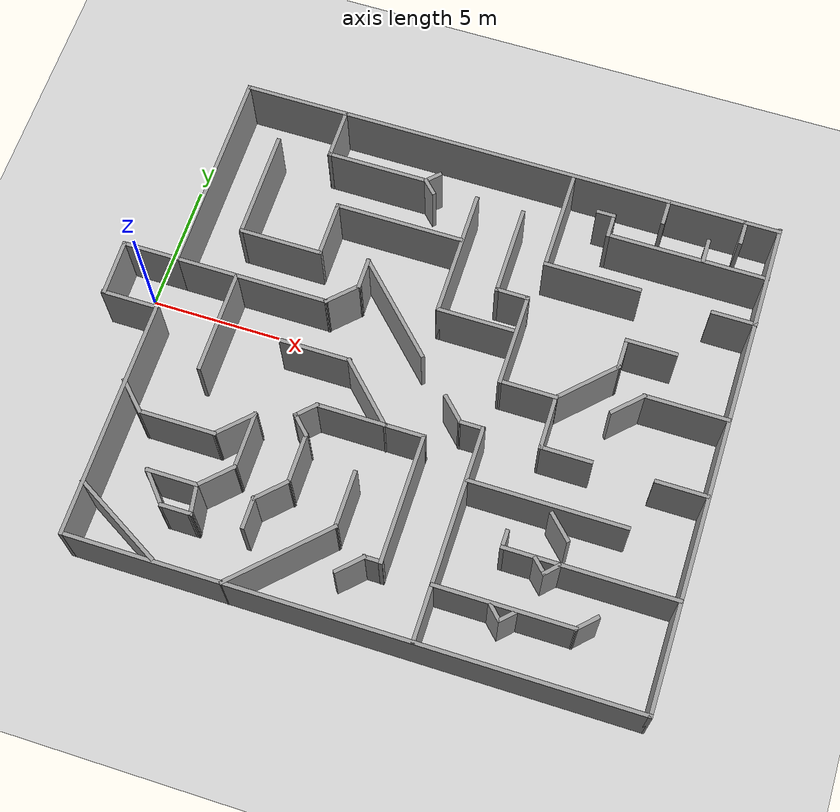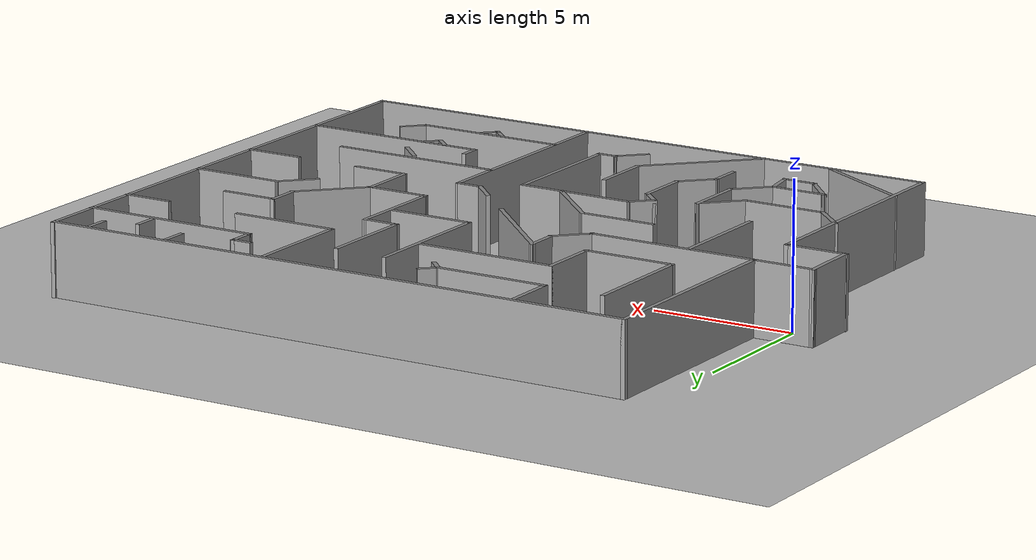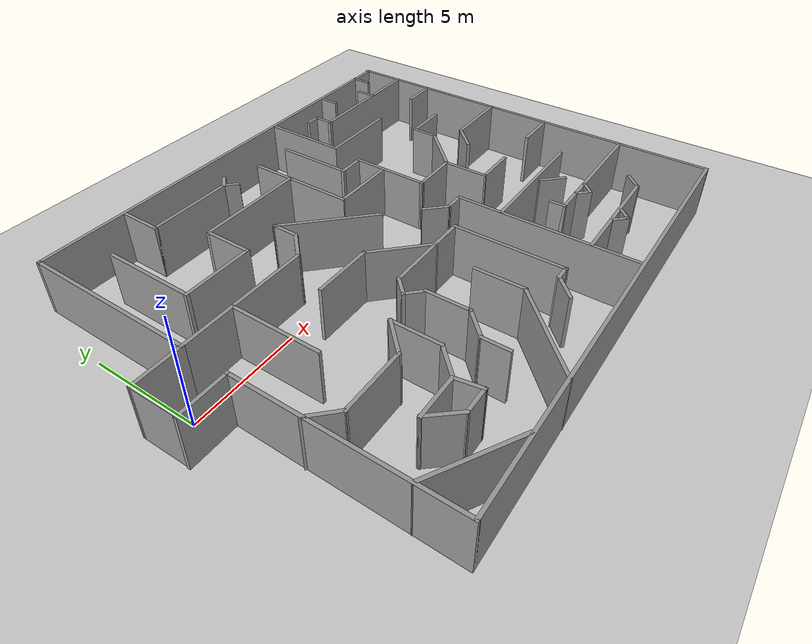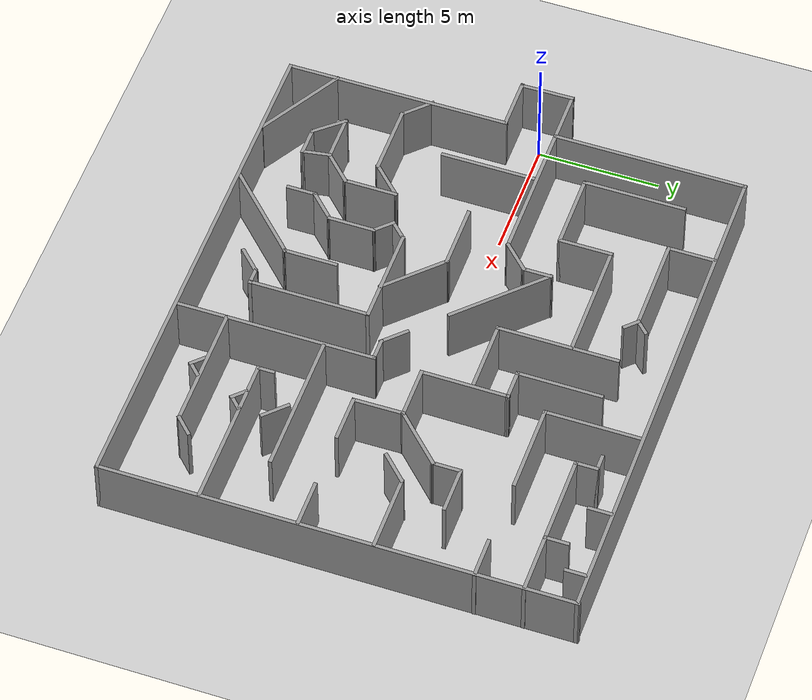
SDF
<sdf version="1.7">
 <world name="default">
  <light name="sun" type="directional">
   <pose>0 0 10 0 -0 0</pose>
   <diffuse>0.8 0.8 0.8 1</diffuse>
   <specular>0.2 0.2 0.2 1</specular>
   <attenuation>
    <range>1000</range>
    <constant>0.9</constant>
    <linear>0.01</linear>
    <quadratic>0.001</quadratic>
   </attenuation>
   <direction>-0.5 0.1 -0.9</direction>
   <spot><inner_angle>0</inner_angle><outer_angle>0</outer_angle><falloff>0</falloff></spot>
  </light>
  <model name="ground_plane">
   <static>1</static>
   <link name="link">
    <collision name="collision">
     <geometry><plane><normal>0 0 1</normal><size>100 100</size></plane></geometry>
     <surface>
      <contact><collide_bitmask>65535</collide_bitmask></contact>
      <friction><ode><mu>100</mu><mu2>50</mu2></ode></friction>
     </surface>
    </collision>
    <visual name="visual">
     <cast_shadows>0</cast_shadows>
     <geometry><plane><normal>0 0 1</normal><size>100 100</size></plane></geometry>
     <material>
      <script><uri>file://media/materials/scripts/gazebo.material</uri><name>Gazebo/Grey</name></script>
     </material>
    </visual>
   </link>
  </model>
  <gravity>0 0 -9.8</gravity>
  <magnetic_field>6e-06 2.3e-05 -4.2e-05</magnetic_field>
  <atmosphere type="adiabatic"/>
  <physics type="ode">
   <max_step_size>0.001</max_step_size>
   <real_time_factor>1</real_time_factor>
   <real_time_update_rate>1000</real_time_update_rate>
  </physics>
  <scene><ambient>0.4 0.4 0.4 1</ambient><background>0.7 0.7 0.7 1</background><shadows>1</shadows></scene>
  <spherical_coordinates>
   <surface_model>EARTH_WGS84</surface_model>
   <latitude_deg>0</latitude_deg>
   <longitude_deg>0</longitude_deg>
   <elevation>0</elevation>
   <heading_deg>0</heading_deg>
  </spherical_coordinates>
  <model name="maze_1">
   <pose>10.4033 -0.718435 0 0 -0 0</pose>
   <link name="Wall_1">
    <collision name="Wall_1_Collision">
     <geometry><box><size>21.25 0.15 2.5</size></box></geometry>
     <pose>0 0 1.25 0 -0 0</pose>
    </collision>
    <visual name="Wall_1_Visual">
     <pose>0 0 1.25 0 -0 0</pose>
     <geometry><box><size>21.25 0.15 2.5</size></box></geometry>
     <material>
      <script><uri>file://media/materials/scripts/gazebo.material</uri><name>Gazebo/Grey</name></script>
      <ambient>1 1 1 1</ambient>
     </material>
     <meta><layer>0</layer></meta>
    </visual>
    <pose>1.04094 9.5097 0 0 -0 0</pose>
   </link>
   <link name="Wall_10">
    <collision name="Wall_10_Collision">
     <geometry><box><size>9.25 0.15 2.5</size></box></geometry>
     <pose>0 0 1.25 0 -0 0</pose>
    </collision>
    <visual name="Wall_10_Visual">
     <pose>0 0 1.25 0 -0 0</pose>
     <geometry><box><size>9.25 0.15 2.5</size></box></geometry>
     <material>
      <script><uri>file://media/materials/scripts/gazebo.material</uri><name>Gazebo/Grey</name></script>
      <ambient>1 1 1 1</ambient>
     </material>
     <meta><layer>0</layer></meta>
    </visual>
    <pose>-9.50906 -4.9903 0 0 -0 -1.5708</pose>
   </link>
   <link name="Wall_101">
    <collision name="Wall_101_Collision">
     <geometry><box><size>1.32162 0.15 2.5</size></box></geometry>
     <pose>0 0 1.25 0 -0 0</pose>
    </collision>
    <visual name="Wall_101_Visual">
     <pose>0 0 1.25 0 -0 0</pose>
     <geometry><box><size>1.32162 0.15 2.5</size></box></geometry>
     <material>
      <script><uri>file://media/materials/scripts/gazebo.material</uri><name>Gazebo/Grey</name></script>
      <ambient>1 1 1 1</ambient>
     </material>
     <meta><layer>0</layer></meta>
    </visual>
    <pose>2.7821 4.02033 0 0 -0 3.14159</pose>
   </link>
   <link name="Wall_103">
    <collision name="Wall_103_Collision">
     <geometry><box><size>3.52514 0.15 2.5</size></box></geometry>
     <pose>0 0 1.25 0 -0 0</pose>
    </collision>
    <visual name="Wall_103_Visual">
     <pose>0 0 1.25 0 -0 0</pose>
     <geometry><box><size>3.52514 0.15 2.5</size></box></geometry>
     <material>
      <script><uri>file://media/materials/scripts/gazebo.material</uri><name>Gazebo/Grey</name></script>
      <ambient>1 1 1 1</ambient>
     </material>
     <meta><layer>0</layer></meta>
    </visual>
    <pose>2.19629 5.70789 0 0 -0 1.5708</pose>
   </link>
   <link name="Wall_105">
    <collision name="Wall_105_Collision">
     <geometry><box><size>5 0.15 2.5</size></box></geometry>
     <pose>0 0 1.25 0 -0 0</pose>
    </collision>
    <visual name="Wall_105_Visual">
     <pose>0 0 1.25 0 -0 0</pose>
     <geometry><box><size>5 0.15 2.5</size></box></geometry>
     <material>
      <script><uri>file://media/materials/scripts/gazebo.material</uri><name>Gazebo/Grey</name></script>
      <ambient>1 1 1 1</ambient>
     </material>
     <meta><layer>0</layer></meta>
    </visual>
    <pose>0.366002 5.02538 0 0 -0 -1.5708</pose>
   </link>
   <link name="Wall_106">
    <collision name="Wall_106_Collision">
     <geometry><box><size>3 0.15 2.5</size></box></geometry>
     <pose>0 0 1.25 0 -0 0</pose>
    </collision>
    <visual name="Wall_106_Visual">
     <pose>0 0 1.25 0 -0 0</pose>
     <geometry><box><size>3 0.15 2.5</size></box></geometry>
     <material>
      <script><uri>file://media/materials/scripts/gazebo.material</uri><name>Gazebo/Grey</name></script>
      <ambient>1 1 1 1</ambient>
     </material>
     <meta><layer>0</layer></meta>
    </visual>
    <pose>1.791 2.60038 0 0 -0 0</pose>
   </link>
   <link name="Wall_108">
    <collision name="Wall_108_Collision">
     <geometry><box><size>5 0.15 2.5</size></box></geometry>
     <pose>0 0 1.25 0 -0 0</pose>
    </collision>
    <visual name="Wall_108_Visual">
     <pose>0 0 1.25 0 -0 0</pose>
     <geometry><box><size>5 0.15 2.5</size></box></geometry>
     <material>
      <script><uri>file://media/materials/scripts/gazebo.material</uri><name>Gazebo/Grey</name></script>
      <ambient>1 1 1 1</ambient>
     </material>
     <meta><layer>0</layer></meta>
    </visual>
    <pose>-2.11149 5.58819 0 0 -0 3.14159</pose>
   </link>
   <link name="Wall_109">
    <collision name="Wall_109_Collision">
     <geometry><box><size>2.25 0.15 2.5</size></box></geometry>
     <pose>0 0 1.25 0 -0 0</pose>
    </collision>
    <visual name="Wall_109_Visual">
     <pose>0 0 1.25 0 -0 0</pose>
     <geometry><box><size>2.25 0.15 2.5</size></box></geometry>
     <material>
      <script><uri>file://media/materials/scripts/gazebo.material</uri><name>Gazebo/Grey</name></script>
      <ambient>1 1 1 1</ambient>
     </material>
     <meta><layer>0</layer></meta>
    </visual>
    <pose>-4.53649 4.53819 0 0 -0 -1.5708</pose>
   </link>
   <link name="Wall_111">
    <collision name="Wall_111_Collision">
     <geometry><box><size>3.25 0.15 2.5</size></box></geometry>
     <pose>0 0 1.25 0 -0 0</pose>
    </collision>
    <visual name="Wall_111_Visual">
     <pose>0 0 1.25 0 -0 0</pose>
     <geometry><box><size>3.25 0.15 2.5</size></box></geometry>
     <material>
      <script><uri>file://media/materials/scripts/gazebo.material</uri><name>Gazebo/Grey</name></script>
      <ambient>1 1 1 1</ambient>
     </material>
     <meta><layer>0</layer></meta>
    </visual>
    <pose>-6.08649 3.48819 0 0 -0 3.14159</pose>
   </link>
   <link name="Wall_112">
    <collision name="Wall_112_Collision">
     <geometry><box><size>4.25 0.15 2.5</size></box></geometry>
     <pose>0 0 1.25 0 -0 0</pose>
    </collision>
    <visual name="Wall_112_Visual">
     <pose>0 0 1.25 0 -0 0</pose>
     <geometry><box><size>4.25 0.15 2.5</size></box></geometry>
     <material>
      <script><uri>file://media/materials/scripts/gazebo.material</uri><name>Gazebo/Grey</name></script>
      <ambient>1 1 1 1</ambient>
     </material>
     <meta><layer>0</layer></meta>
    </visual>
    <pose>-7.63649 5.53819 0 0 -0 1.5708</pose>
   </link>
   <link name="Wall_114">
    <collision name="Wall_114_Collision">
     <geometry><box><size>2 0.15 2.5</size></box></geometry>
     <pose>0 0 1.25 0 -0 0</pose>
    </collision>
    <visual name="Wall_114_Visual">
     <pose>0 0 1.25 0 -0 0</pose>
     <geometry><box><size>2 0.15 2.5</size></box></geometry>
     <material>
      <script><uri>file://media/materials/scripts/gazebo.material</uri><name>Gazebo/Grey</name></script>
      <ambient>1 1 1 1</ambient>
     </material>
     <meta><layer>0</layer></meta>
    </visual>
    <pose>-5.55137 8.54002 0 0 -0 -1.5708</pose>
   </link>
   <link name="Wall_115">
    <collision name="Wall_115_Collision">
     <geometry><box><size>4 0.15 2.5</size></box></geometry>
     <pose>0 0 1.25 0 -0 0</pose>
    </collision>
    <visual name="Wall_115_Visual">
     <pose>0 0 1.25 0 -0 0</pose>
     <geometry><box><size>4 0.15 2.5</size></box></geometry>
     <material>
      <script><uri>file://media/materials/scripts/gazebo.material</uri><name>Gazebo/Grey</name></script>
      <ambient>1 1 1 1</ambient>
     </material>
     <meta><layer>0</layer></meta>
    </visual>
    <pose>-3.62637 7.61502 0 0 -0 0</pose>
   </link>
   <link name="Wall_116">
    <collision name="Wall_116_Collision">
     <geometry><box><size>0.75 0.15 2.5</size></box></geometry>
     <pose>0 0 1.25 0 -0 0</pose>
    </collision>
    <visual name="Wall_116_Visual">
     <pose>0 0 1.25 0 -0 0</pose>
     <geometry><box><size>0.75 0.15 2.5</size></box></geometry>
     <material>
      <script><uri>file://media/materials/scripts/gazebo.material</uri><name>Gazebo/Grey</name></script>
      <ambient>1 1 1 1</ambient>
     </material>
     <meta><layer>0</layer></meta>
    </visual>
    <pose>-1.48924 7.82716 0 0 -0 0.785398</pose>
   </link>
   <link name="Wall_118">
    <collision name="Wall_118_Collision">
     <geometry><box><size>0.75 0.15 2.5</size></box></geometry>
     <pose>0 0 1.25 0 -0 0</pose>
    </collision>
    <visual name="Wall_118_Visual">
     <pose>0 0 1.25 0 -0 0</pose>
     <geometry><box><size>0.75 0.15 2.5</size></box></geometry>
     <material>
      <script><uri>file://media/materials/scripts/gazebo.material</uri><name>Gazebo/Grey</name></script>
      <ambient>1 1 1 1</ambient>
     </material>
     <meta><layer>0</layer></meta>
    </visual>
    <pose>-1.48924 7.40289 0 0 -0 -0.785398</pose>
   </link>
   <link name="Wall_120">
    <collision name="Wall_120_Collision">
     <geometry><box><size>3.25 0.15 2.5</size></box></geometry>
     <pose>0 0 1.25 0 -0 0</pose>
    </collision>
    <visual name="Wall_120_Visual">
     <pose>0 0 1.25 0 -0 0</pose>
     <geometry><box><size>3.25 0.15 2.5</size></box></geometry>
     <material>
      <script><uri>file://media/materials/scripts/gazebo.material</uri><name>Gazebo/Grey</name></script>
      <ambient>1 1 1 1</ambient>
     </material>
     <meta><layer>0</layer></meta>
    </visual>
    <pose>10.0108 1.54112 0 0 -0 3.14159</pose>
   </link>
   <link name="Wall_121">
    <collision name="Wall_121_Collision">
     <geometry><box><size>1.5 0.15 2.5</size></box></geometry>
     <pose>0 0 1.25 0 -0 0</pose>
    </collision>
    <visual name="Wall_121_Visual">
     <pose>0 0 1.25 0 -0 0</pose>
     <geometry><box><size>1.5 0.15 2.5</size></box></geometry>
     <material>
      <script><uri>file://media/materials/scripts/gazebo.material</uri><name>Gazebo/Grey</name></script>
      <ambient>1 1 1 1</ambient>
     </material>
     <meta><layer>0</layer></meta>
    </visual>
    <pose>7.98345 1.06382 0 0 -0 -2.35619</pose>
   </link>
   <link name="Wall_124">
    <collision name="Wall_124_Collision">
     <geometry><box><size>1.25 0.15 2.5</size></box></geometry>
     <pose>0 0 1.25 0 -0 0</pose>
    </collision>
    <visual name="Wall_124_Visual">
     <pose>0 0 1.25 0 -0 0</pose>
     <geometry><box><size>1.25 0.15 2.5</size></box></geometry>
     <material>
      <script><uri>file://media/materials/scripts/gazebo.material</uri><name>Gazebo/Grey</name></script>
      <ambient>1 1 1 1</ambient>
     </material>
     <meta><layer>0</layer></meta>
    </visual>
    <pose>6.91345 -4.11008 0 0 -0 -0.785398</pose>
   </link>
   <link name="Wall_126">
    <collision name="Wall_126_Collision">
     <geometry><box><size>6.25 0.15 2.5</size></box></geometry>
     <pose>0 0 1.25 0 -0 0</pose>
    </collision>
    <visual name="Wall_126_Visual">
     <pose>0 0 1.25 0 -0 0</pose>
     <geometry><box><size>6.25 0.15 2.5</size></box></geometry>
     <material>
      <script><uri>file://media/materials/scripts/gazebo.material</uri><name>Gazebo/Grey</name></script>
      <ambient>1 1 1 1</ambient>
     </material>
     <meta><layer>0</layer></meta>
    </visual>
    <pose>8.55205 7.45184 0 0 -0 3.14159</pose>
   </link>
   <link name="Wall_127">
    <collision name="Wall_127_Collision">
     <geometry><box><size>1 0.15 2.5</size></box></geometry>
     <pose>0 0 1.25 0 -0 0</pose>
    </collision>
    <visual name="Wall_127_Visual">
     <pose>0 0 1.25 0 -0 0</pose>
     <geometry><box><size>1 0.15 2.5</size></box></geometry>
     <material>
      <script><uri>file://media/materials/scripts/gazebo.material</uri><name>Gazebo/Grey</name></script>
      <ambient>1 1 1 1</ambient>
     </material>
     <meta><layer>0</layer></meta>
    </visual>
    <pose>5.50205 7.87684 0 0 -0 1.5708</pose>
   </link>
   <link name="Wall_129">
    <collision name="Wall_129_Collision">
     <geometry><box><size>4 0.15 2.5</size></box></geometry>
     <pose>0 0 1.25 0 -0 0</pose>
    </collision>
    <visual name="Wall_129_Visual">
     <pose>0 0 1.25 0 -0 0</pose>
     <geometry><box><size>4 0.15 2.5</size></box></geometry>
     <material>
      <script><uri>file://media/materials/scripts/gazebo.material</uri><name>Gazebo/Grey</name></script>
      <ambient>1 1 1 1</ambient>
     </material>
     <meta><layer>0</layer></meta>
    </visual>
    <pose>3.61152 7.5099 0 0 -0 -1.5708</pose>
   </link>
   <link name="Wall_13">
    <collision name="Wall_13_Collision">
     <geometry><box><size>21.25 0.15 2.5</size></box></geometry>
     <pose>0 0 1.25 0 -0 0</pose>
    </collision>
    <visual name="Wall_13_Visual">
     <pose>0 0 1.25 0 -0 0</pose>
     <geometry><box><size>21.25 0.15 2.5</size></box></geometry>
     <material>
      <script><uri>file://media/materials/scripts/gazebo.material</uri><name>Gazebo/Grey</name></script>
      <ambient>1 1 1 1</ambient>
     </material>
     <meta><layer>0</layer></meta>
    </visual>
    <pose>1.04094 -9.5403 0 0 -0 0</pose>
   </link>
   <link name="Wall_130">
    <collision name="Wall_130_Collision">
     <geometry><box><size>3.75 0.15 2.5</size></box></geometry>
     <pose>0 0 1.25 0 -0 0</pose>
    </collision>
    <visual name="Wall_130_Visual">
     <pose>0 0 1.25 0 -0 0</pose>
     <geometry><box><size>3.75 0.15 2.5</size></box></geometry>
     <material>
      <script><uri>file://media/materials/scripts/gazebo.material</uri><name>Gazebo/Grey</name></script>
      <ambient>1 1 1 1</ambient>
     </material>
     <meta><layer>0</layer></meta>
    </visual>
    <pose>5.41152 5.5849 0 0 -0 0</pose>
   </link>
   <link name="Wall_134">
    <collision name="Wall_134_Collision">
     <geometry><box><size>1 0.15 2.5</size></box></geometry>
     <pose>0 0 1.25 0 -0 0</pose>
    </collision>
    <visual name="Wall_134_Visual">
     <pose>0 0 1.25 0 -0 0</pose>
     <geometry><box><size>1 0.15 2.5</size></box></geometry>
     <material>
      <script><uri>file://media/materials/scripts/gazebo.material</uri><name>Gazebo/Grey</name></script>
      <ambient>1 1 1 1</ambient>
     </material>
     <meta><layer>0</layer></meta>
    </visual>
    <pose>10.3043 9.06822 0 0 -0 -1.5708</pose>
   </link>
   <link name="Wall_14">
    <collision name="Wall_14_Collision">
     <geometry><box><size>19.25 0.15 2.5</size></box></geometry>
     <pose>0 0 1.25 0 -0 0</pose>
    </collision>
    <visual name="Wall_14_Visual">
     <pose>0 0 1.25 0 -0 0</pose>
     <geometry><box><size>19.25 0.15 2.5</size></box></geometry>
     <material>
      <script><uri>file://media/materials/scripts/gazebo.material</uri><name>Gazebo/Grey</name></script>
      <ambient>1 1 1 1</ambient>
     </material>
     <meta><layer>0</layer></meta>
    </visual>
    <pose>11.5909 0.009698 0 0 -0 1.5708</pose>
   </link>
   <link name="Wall_140">
    <collision name="Wall_140_Collision">
     <geometry><box><size>1 0.15 2.5</size></box></geometry>
     <pose>0 0 1.25 0 -0 0</pose>
    </collision>
    <visual name="Wall_140_Visual">
     <pose>0 0 1.25 0 -0 0</pose>
     <geometry><box><size>1 0.15 2.5</size></box></geometry>
     <material>
      <script><uri>file://media/materials/scripts/gazebo.material</uri><name>Gazebo/Grey</name></script>
      <ambient>1 1 1 1</ambient>
     </material>
     <meta><layer>0</layer></meta>
    </visual>
    <pose>7.32974 9.0099 0 0 -0 -1.5708</pose>
   </link>
   <link name="Wall_142">
    <collision name="Wall_142_Collision">
     <geometry><box><size>1 0.15 2.5</size></box></geometry>
     <pose>0 0 1.25 0 -0 0</pose>
    </collision>
    <visual name="Wall_142_Visual">
     <pose>0 0 1.25 0 -0 0</pose>
     <geometry><box><size>1 0.15 2.5</size></box></geometry>
     <material>
      <script><uri>file://media/materials/scripts/gazebo.material</uri><name>Gazebo/Grey</name></script>
      <ambient>1 1 1 1</ambient>
     </material>
     <meta><layer>0</layer></meta>
    </visual>
    <pose>9.1524 7.90601 0 0 -0 1.5708</pose>
   </link>
   <link name="Wall_144">
    <collision name="Wall_144_Collision">
     <geometry><box><size>0.75 0.15 2.5</size></box></geometry>
     <pose>0 0 1.25 0 -0 0</pose>
    </collision>
    <visual name="Wall_144_Visual">
     <pose>0 0 1.25 0 -0 0</pose>
     <geometry><box><size>0.75 0.15 2.5</size></box></geometry>
     <material>
      <script><uri>file://media/materials/scripts/gazebo.material</uri><name>Gazebo/Grey</name></script>
      <ambient>1 1 1 1</ambient>
     </material>
     <meta><layer>0</layer></meta>
    </visual>
    <pose>5.20205 8.30184 0 0 -0 3.14159</pose>
   </link>
   <link name="Wall_146">
    <collision name="Wall_146_Collision">
     <geometry><box><size>1.75 0.15 2.5</size></box></geometry>
     <pose>0 0 1.25 0 -0 0</pose>
    </collision>
    <visual name="Wall_146_Visual">
     <pose>0 0 1.25 0 -0 0</pose>
     <geometry><box><size>1.75 0.15 2.5</size></box></geometry>
     <material>
      <script><uri>file://media/materials/scripts/gazebo.material</uri><name>Gazebo/Grey</name></script>
      <ambient>1 1 1 1</ambient>
     </material>
     <meta><layer>0</layer></meta>
    </visual>
    <pose>10.8102 5.51432 0 0 -0 3.14159</pose>
   </link>
   <link name="Wall_18">
    <collision name="Wall_18_Collision">
     <geometry><box><size>4 0.15 2.5</size></box></geometry>
     <pose>0 0 1.25 0 -0 0</pose>
    </collision>
    <visual name="Wall_18_Visual">
     <pose>0 0 1.25 0 -0 0</pose>
     <geometry><box><size>4 0.15 2.5</size></box></geometry>
     <material>
      <script><uri>file://media/materials/scripts/gazebo.material</uri><name>Gazebo/Grey</name></script>
      <ambient>1 1 1 1</ambient>
     </material>
     <meta><layer>0</layer></meta>
    </visual>
    <pose>-7.84178 -8.50497 0 0 -0 -0.523599</pose>
   </link>
   <link name="Wall_20">
    <collision name="Wall_20_Collision">
     <geometry><box><size>4.5 0.15 2.5</size></box></geometry>
     <pose>0 0 1.25 0 -0 0</pose>
    </collision>
    <visual name="Wall_20_Visual">
     <pose>0 0 1.25 0 -0 0</pose>
     <geometry><box><size>4.5 0.15 2.5</size></box></geometry>
     <material>
      <script><uri>file://media/materials/scripts/gazebo.material</uri><name>Gazebo/Grey</name></script>
      <ambient>1 1 1 1</ambient>
     </material>
     <meta><layer>0</layer></meta>
    </visual>
    <pose>-2.04806 -7.99068 0 0 -0 0.785398</pose>
   </link>
   <link name="Wall_21">
    <collision name="Wall_21_Collision">
     <geometry><box><size>2.25 0.15 2.5</size></box></geometry>
     <pose>0 0 1.25 0 -0 0</pose>
    </collision>
    <visual name="Wall_21_Visual">
     <pose>0 0 1.25 0 -0 0</pose>
     <geometry><box><size>2.25 0.15 2.5</size></box></geometry>
     <material>
      <script><uri>file://media/materials/scripts/gazebo.material</uri><name>Gazebo/Grey</name></script>
      <ambient>1 1 1 1</ambient>
     </material>
     <meta><layer>0</layer></meta>
    </visual>
    <pose>-0.510104 -5.40272 0 0 -0 1.5708</pose>
   </link>
   <link name="Wall_25">
    <collision name="Wall_25_Collision">
     <geometry><box><size>1.5 0.15 2.5</size></box></geometry>
     <pose>0 0 1.25 0 -0 0</pose>
    </collision>
    <visual name="Wall_25_Visual">
     <pose>0 0 1.25 0 -0 0</pose>
     <geometry><box><size>1.5 0.15 2.5</size></box></geometry>
     <material>
      <script><uri>file://media/materials/scripts/gazebo.material</uri><name>Gazebo/Grey</name></script>
      <ambient>1 1 1 1</ambient>
     </material>
     <meta><layer>0</layer></meta>
    </visual>
    <pose>-9.0688 -3.99476 0 0 -0 -0.785398</pose>
   </link>
   <link name="Wall_26">
    <collision name="Wall_26_Collision">
     <geometry><box><size>3 0.15 2.5</size></box></geometry>
     <pose>0 0 1.25 0 -0 0</pose>
    </collision>
    <visual name="Wall_26_Visual">
     <pose>0 0 1.25 0 -0 0</pose>
     <geometry><box><size>3 0.15 2.5</size></box></geometry>
     <material>
      <script><uri>file://media/materials/scripts/gazebo.material</uri><name>Gazebo/Grey</name></script>
      <ambient>1 1 1 1</ambient>
     </material>
     <meta><layer>0</layer></meta>
    </visual>
    <pose>-7.1665 -4.47206 0 0 -0 0</pose>
   </link>
   <link name="Wall_27">
    <collision name="Wall_27_Collision">
     <geometry><box><size>1.75 0.15 2.5</size></box></geometry>
     <pose>0 0 1.25 0 -0 0</pose>
    </collision>
    <visual name="Wall_27_Visual">
     <pose>0 0 1.25 0 -0 0</pose>
     <geometry><box><size>1.75 0.15 2.5</size></box></geometry>
     <material>
      <script><uri>file://media/materials/scripts/gazebo.material</uri><name>Gazebo/Grey</name></script>
      <ambient>1 1 1 1</ambient>
     </material>
     <meta><layer>0</layer></meta>
    </visual>
    <pose>-5.17582 -3.90637 0 0 -0 0.785398</pose>
   </link>
   <link name="Wall_28">
    <collision name="Wall_28_Collision">
     <geometry><box><size>2.25 0.15 2.5</size></box></geometry>
     <pose>0 0 1.25 0 -0 0</pose>
    </collision>
    <visual name="Wall_28_Visual">
     <pose>0 0 1.25 0 -0 0</pose>
     <geometry><box><size>2.25 0.15 2.5</size></box></geometry>
     <material>
      <script><uri>file://media/materials/scripts/gazebo.material</uri><name>Gazebo/Grey</name></script>
      <ambient>1 1 1 1</ambient>
     </material>
     <meta><layer>0</layer></meta>
    </visual>
    <pose>-4.61013 -4.39069 0 0 -0 -1.5708</pose>
   </link>
   <link name="Wall_29">
    <collision name="Wall_29_Collision">
     <geometry><box><size>1.5 0.15 2.5</size></box></geometry>
     <pose>0 0 1.25 0 -0 0</pose>
    </collision>
    <visual name="Wall_29_Visual">
     <pose>0 0 1.25 0 -0 0</pose>
     <geometry><box><size>1.5 0.15 2.5</size></box></geometry>
     <material>
      <script><uri>file://media/materials/scripts/gazebo.material</uri><name>Gazebo/Grey</name></script>
      <ambient>1 1 1 1</ambient>
     </material>
     <meta><layer>0</layer></meta>
    </visual>
    <pose>-5.08743 -5.91798 0 0 -0 -2.35619</pose>
   </link>
   <link name="Wall_31">
    <collision name="Wall_31_Collision">
     <geometry><box><size>1.25 0.15 2.5</size></box></geometry>
     <pose>0 0 1.25 0 -0 0</pose>
    </collision>
    <visual name="Wall_31_Visual">
     <pose>0 0 1.25 0 -0 0</pose>
     <geometry><box><size>1.25 0.15 2.5</size></box></geometry>
     <material>
      <script><uri>file://media/materials/scripts/gazebo.material</uri><name>Gazebo/Grey</name></script>
      <ambient>1 1 1 1</ambient>
     </material>
     <meta><layer>0</layer></meta>
    </visual>
    <pose>-6.02433 -7.53788 0 0 -0 3.14159</pose>
   </link>
   <link name="Wall_33">
    <collision name="Wall_33_Collision">
     <geometry><box><size>2 0.15 2.5</size></box></geometry>
     <pose>0 0 1.25 0 -0 0</pose>
    </collision>
    <visual name="Wall_33_Visual">
     <pose>0 0 1.25 0 -0 0</pose>
     <geometry><box><size>2 0.15 2.5</size></box></geometry>
     <material>
      <script><uri>file://media/materials/scripts/gazebo.material</uri><name>Gazebo/Grey</name></script>
      <ambient>1 1 1 1</ambient>
     </material>
     <meta><layer>0</layer></meta>
    </visual>
    <pose>-6.57906 -6.46388 0 0 -0 0</pose>
   </link>
   <link name="Wall_36">
    <collision name="Wall_36_Collision">
     <geometry><box><size>1.57052 0.15 2.5</size></box></geometry>
     <pose>0 0 1.25 0 -0 0</pose>
    </collision>
    <visual name="Wall_36_Visual">
     <pose>0 0 1.25 0 -0 0</pose>
     <geometry><box><size>1.57052 0.15 2.5</size></box></geometry>
     <material>
      <script><uri>file://media/materials/scripts/gazebo.material</uri><name>Gazebo/Grey</name></script>
      <ambient>1 1 1 1</ambient>
     </material>
     <meta><layer>0</layer></meta>
    </visual>
    <pose>-7.03919 -7.00088 0 0 -0 -0.857275</pose>
   </link>
   <link name="Wall_38">
    <collision name="Wall_38_Collision">
     <geometry><box><size>1.23894 0.15 2.5</size></box></geometry>
     <pose>0 0 1.25 0 -0 0</pose>
    </collision>
    <visual name="Wall_38_Visual">
     <pose>0 0 1.25 0 -0 0</pose>
     <geometry><box><size>1.23894 0.15 2.5</size></box></geometry>
     <material>
      <script><uri>file://media/materials/scripts/gazebo.material</uri><name>Gazebo/Grey</name></script>
      <ambient>1 1 1 1</ambient>
     </material>
     <meta><layer>0</layer></meta>
    </visual>
    <pose>-5.56419 -7.00088 0 0 -0 1.73661</pose>
   </link>
   <link name="Wall_4">
    <collision name="Wall_4_Collision">
     <geometry><box><size>8 0.15 2.5</size></box></geometry>
     <pose>0 0 1.25 0 -0 0</pose>
    </collision>
    <visual name="Wall_4_Visual">
     <pose>0 0 1.25 0 -0 0</pose>
     <geometry><box><size>8 0.15 2.5</size></box></geometry>
     <material>
      <script><uri>file://media/materials/scripts/gazebo.material</uri><name>Gazebo/Grey</name></script>
      <ambient>1 1 1 1</ambient>
     </material>
     <meta><layer>0</layer></meta>
    </visual>
    <pose>-9.50906 5.5847 0 0 -0 -1.5708</pose>
   </link>
   <link name="Wall_40">
    <collision name="Wall_40_Collision">
     <geometry><box><size>1.25 0.15 2.5</size></box></geometry>
     <pose>0 0 1.25 0 -0 0</pose>
    </collision>
    <visual name="Wall_40_Visual">
     <pose>0 0 1.25 0 -0 0</pose>
     <geometry><box><size>1.25 0.15 2.5</size></box></geometry>
     <material>
      <script><uri>file://media/materials/scripts/gazebo.material</uri><name>Gazebo/Grey</name></script>
      <ambient>1 1 1 1</ambient>
     </material>
     <meta><layer>0</layer></meta>
    </visual>
    <pose>-3.57595 -6.88892 0 0 -0 1.5708</pose>
   </link>
   <link name="Wall_41">
    <collision name="Wall_41_Collision">
     <geometry><box><size>1.5 0.15 2.5</size></box></geometry>
     <pose>0 0 1.25 0 -0 0</pose>
    </collision>
    <visual name="Wall_41_Visual">
     <pose>0 0 1.25 0 -0 0</pose>
     <geometry><box><size>1.5 0.15 2.5</size></box></geometry>
     <material>
      <script><uri>file://media/materials/scripts/gazebo.material</uri><name>Gazebo/Grey</name></script>
      <ambient>1 1 1 1</ambient>
     </material>
     <meta><layer>0</layer></meta>
    </visual>
    <pose>-3.09865 -5.86162 0 0 -0 0.785398</pose>
   </link>
   <link name="Wall_42">
    <collision name="Wall_42_Collision">
     <geometry><box><size>2 0.15 2.5</size></box></geometry>
     <pose>0 0 1.25 0 -0 0</pose>
    </collision>
    <visual name="Wall_42_Visual">
     <pose>0 0 1.25 0 -0 0</pose>
     <geometry><box><size>2 0.15 2.5</size></box></geometry>
     <material>
      <script><uri>file://media/materials/scripts/gazebo.material</uri><name>Gazebo/Grey</name></script>
      <ambient>1 1 1 1</ambient>
     </material>
     <meta><layer>0</layer></meta>
    </visual>
    <pose>-2.62136 -4.45932 0 0 -0 1.5708</pose>
   </link>
   <link name="Wall_43">
    <collision name="Wall_43_Collision">
     <geometry><box><size>1 0.15 2.5</size></box></geometry>
     <pose>0 0 1.25 0 -0 0</pose>
    </collision>
    <visual name="Wall_43_Visual">
     <pose>0 0 1.25 0 -0 0</pose>
     <geometry><box><size>1 0.15 2.5</size></box></geometry>
     <material>
      <script><uri>file://media/materials/scripts/gazebo.material</uri><name>Gazebo/Grey</name></script>
      <ambient>1 1 1 1</ambient>
     </material>
     <meta><layer>0</layer></meta>
    </visual>
    <pose>-2.92188 -3.2338 0 0 -0 2.35619</pose>
   </link>
   <link name="Wall_44">
    <collision name="Wall_44_Collision">
     <geometry><box><size>1 0.15 2.5</size></box></geometry>
     <pose>0 0 1.25 0 -0 0</pose>
    </collision>
    <visual name="Wall_44_Visual">
     <pose>0 0 1.25 0 -0 0</pose>
     <geometry><box><size>1 0.15 2.5</size></box></geometry>
     <material>
      <script><uri>file://media/materials/scripts/gazebo.material</uri><name>Gazebo/Grey</name></script>
      <ambient>1 1 1 1</ambient>
     </material>
     <meta><layer>0</layer></meta>
    </visual>
    <pose>-2.92188 -2.63276 0 0 -0 0.785398</pose>
   </link>
   <link name="Wall_45">
    <collision name="Wall_45_Collision">
     <geometry><box><size>4.16712 0.15 2.5</size></box></geometry>
     <pose>0 0 1.25 0 -0 0</pose>
    </collision>
    <visual name="Wall_45_Visual">
     <pose>0 0 1.25 0 -0 0</pose>
     <geometry><box><size>4.16712 0.15 2.5</size></box></geometry>
     <material>
      <script><uri>file://media/materials/scripts/gazebo.material</uri><name>Gazebo/Grey</name></script>
      <ambient>1 1 1 1</ambient>
     </material>
     <meta><layer>0</layer></meta>
    </visual>
    <pose>-0.612798 -2.33474 0 0 -0 -0.001242</pose>
   </link>
   <link name="Wall_46">
    <collision name="Wall_46_Collision">
     <geometry><box><size>5 0.15 2.5</size></box></geometry>
     <pose>0 0 1.25 0 -0 0</pose>
    </collision>
    <visual name="Wall_46_Visual">
     <pose>0 0 1.25 0 -0 0</pose>
     <geometry><box><size>5 0.15 2.5</size></box></geometry>
     <material>
      <script><uri>file://media/materials/scripts/gazebo.material</uri><name>Gazebo/Grey</name></script>
      <ambient>1 1 1 1</ambient>
     </material>
     <meta><layer>0</layer></meta>
    </visual>
    <pose>1.3882 -4.7698 0 0 -0 -1.5708</pose>
   </link>
   <link name="Wall_47">
    <collision name="Wall_47_Collision">
     <geometry><box><size>0.76127 0.15 2.5</size></box></geometry>
     <pose>0 0 1.25 0 -0 0</pose>
    </collision>
    <visual name="Wall_47_Visual">
     <pose>0 0 1.25 0 -0 0</pose>
     <geometry><box><size>0.76127 0.15 2.5</size></box></geometry>
     <material>
      <script><uri>file://media/materials/scripts/gazebo.material</uri><name>Gazebo/Grey</name></script>
      <ambient>1 1 1 1</ambient>
     </material>
     <meta><layer>0</layer></meta>
    </visual>
    <pose>1.0905 -7.1881 0 0 -0 -3.13877</pose>
   </link>
   <link name="Wall_48">
    <collision name="Wall_48_Collision">
     <geometry><box><size>1.25 0.15 2.5</size></box></geometry>
     <pose>0 0 1.25 0 -0 0</pose>
    </collision>
    <visual name="Wall_48_Visual">
     <pose>0 0 1.25 0 -0 0</pose>
     <geometry><box><size>1.25 0.15 2.5</size></box></geometry>
     <material>
      <script><uri>file://media/materials/scripts/gazebo.material</uri><name>Gazebo/Grey</name></script>
      <ambient>1 1 1 1</ambient>
     </material>
     <meta><layer>0</layer></meta>
    </visual>
    <pose>0.396336 -7.5893 0 0 -0 -2.35619</pose>
   </link>
   <link name="Wall_5">
    <collision name="Wall_5_Collision">
     <geometry><box><size>2.25 0.15 2.5</size></box></geometry>
     <pose>0 0 1.25 0 -0 0</pose>
    </collision>
    <visual name="Wall_5_Visual">
     <pose>0 0 1.25 0 -0 0</pose>
     <geometry><box><size>2.25 0.15 2.5</size></box></geometry>
     <material>
      <script><uri>file://media/materials/scripts/gazebo.material</uri><name>Gazebo/Grey</name></script>
      <ambient>1 1 1 1</ambient>
     </material>
     <meta><layer>0</layer></meta>
    </visual>
    <pose>-10.5591 1.6597 0 0 -0 3.14159</pose>
   </link>
   <link name="Wall_50">
    <collision name="Wall_50_Collision">
     <geometry><box><size>6 0.15 2.5</size></box></geometry>
     <pose>0 0 1.25 0 -0 0</pose>
    </collision>
    <visual name="Wall_50_Visual">
     <pose>0 0 1.25 0 -0 0</pose>
     <geometry><box><size>6 0.15 2.5</size></box></geometry>
     <material>
      <script><uri>file://media/materials/scripts/gazebo.material</uri><name>Gazebo/Grey</name></script>
      <ambient>1 1 1 1</ambient>
     </material>
     <meta><layer>0</layer></meta>
    </visual>
    <pose>-6.58406 1.6597 0 0 -0 0</pose>
   </link>
   <link name="Wall_51">
    <collision name="Wall_51_Collision">
     <geometry><box><size>1.5 0.15 2.5</size></box></geometry>
     <pose>0 0 1.25 0 -0 0</pose>
    </collision>
    <visual name="Wall_51_Visual">
     <pose>0 0 1.25 0 -0 0</pose>
     <geometry><box><size>1.5 0.15 2.5</size></box></geometry>
     <material>
      <script><uri>file://media/materials/scripts/gazebo.material</uri><name>Gazebo/Grey</name></script>
      <ambient>1 1 1 1</ambient>
     </material>
     <meta><layer>0</layer></meta>
    </visual>
    <pose>-3.18177 2.137 0 0 -0 0.785398</pose>
   </link>
   <link name="Wall_53">
    <collision name="Wall_53_Collision">
     <geometry><box><size>1.25 0.15 2.5</size></box></geometry>
     <pose>0 0 1.25 0 -0 0</pose>
    </collision>
    <visual name="Wall_53_Visual">
     <pose>0 0 1.25 0 -0 0</pose>
     <geometry><box><size>1.25 0.15 2.5</size></box></geometry>
     <material>
      <script><uri>file://media/materials/scripts/gazebo.material</uri><name>Gazebo/Grey</name></script>
      <ambient>1 1 1 1</ambient>
     </material>
     <meta><layer>0</layer></meta>
    </visual>
    <pose>-2.70447 3.16429 0 0 -0 1.5708</pose>
   </link>
   <link name="Wall_54">
    <collision name="Wall_54_Collision">
     <geometry><box><size>4.5 0.15 2.5</size></box></geometry>
     <pose>0 0 1.25 0 -0 0</pose>
    </collision>
    <visual name="Wall_54_Visual">
     <pose>0 0 1.25 0 -0 0</pose>
     <geometry><box><size>4.5 0.15 2.5</size></box></geometry>
     <material>
      <script><uri>file://media/materials/scripts/gazebo.material</uri><name>Gazebo/Grey</name></script>
      <ambient>1 1 1 1</ambient>
     </material>
     <meta><layer>0</layer></meta>
    </visual>
    <pose>-1.16651 2.17633 0 0 -0 -0.785398</pose>
   </link>
   <link name="Wall_56">
    <collision name="Wall_56_Collision">
     <geometry><box><size>1.25 0.15 2.5</size></box></geometry>
     <pose>0 0 1.25 0 -0 0</pose>
    </collision>
    <visual name="Wall_56_Visual">
     <pose>0 0 1.25 0 -0 0</pose>
     <geometry><box><size>1.25 0.15 2.5</size></box></geometry>
     <material>
      <script><uri>file://media/materials/scripts/gazebo.material</uri><name>Gazebo/Grey</name></script>
      <ambient>1 1 1 1</ambient>
     </material>
     <meta><layer>0</layer></meta>
    </visual>
    <pose>2.06861 -1.0219 0 0 -0 -0.785398</pose>
   </link>
   <link name="Wall_57">
    <collision name="Wall_57_Collision">
     <geometry><box><size>1 0.15 2.5</size></box></geometry>
     <pose>0 0 1.25 0 -0 0</pose>
    </collision>
    <visual name="Wall_57_Visual">
     <pose>0 0 1.25 0 -0 0</pose>
     <geometry><box><size>1 0.15 2.5</size></box></geometry>
     <material>
      <script><uri>file://media/materials/scripts/gazebo.material</uri><name>Gazebo/Grey</name></script>
      <ambient>1 1 1 1</ambient>
     </material>
     <meta><layer>0</layer></meta>
    </visual>
    <pose>2.88252 -1.41081 0 0 -0 0</pose>
   </link>
   <link name="Wall_58">
    <collision name="Wall_58_Collision">
     <geometry><box><size>8.25 0.15 2.5</size></box></geometry>
     <pose>0 0 1.25 0 -0 0</pose>
    </collision>
    <visual name="Wall_58_Visual">
     <pose>0 0 1.25 0 -0 0</pose>
     <geometry><box><size>8.25 0.15 2.5</size></box></geometry>
     <material>
      <script><uri>file://media/materials/scripts/gazebo.material</uri><name>Gazebo/Grey</name></script>
      <ambient>1 1 1 1</ambient>
     </material>
     <meta><layer>0</layer></meta>
    </visual>
    <pose>3.30752 -5.46081 0 0 -0 -1.5708</pose>
   </link>
   <link name="Wall_6">
    <collision name="Wall_6_Collision">
     <geometry><box><size>2.21964 0.15 2.5</size></box></geometry>
     <pose>0 0 1.25 0 -0 0</pose>
    </collision>
    <visual name="Wall_6_Visual">
     <pose>0 0 1.25 0 -0 0</pose>
     <geometry><box><size>2.21964 0.15 2.5</size></box></geometry>
     <material>
      <script><uri>file://media/materials/scripts/gazebo.material</uri><name>Gazebo/Grey</name></script>
      <ambient>1 1 1 1</ambient>
     </material>
     <meta><layer>0</layer></meta>
    </visual>
    <pose>-11.5938 0.624993 0 0 -0 -1.55601</pose>
   </link>
   <link name="Wall_60">
    <collision name="Wall_60_Collision">
     <geometry><box><size>3 0.15 2.5</size></box></geometry>
     <pose>0 0 1.25 0 -0 0</pose>
    </collision>
    <visual name="Wall_60_Visual">
     <pose>0 0 1.25 0 -0 0</pose>
     <geometry><box><size>3 0.15 2.5</size></box></geometry>
     <material>
      <script><uri>file://media/materials/scripts/gazebo.material</uri><name>Gazebo/Grey</name></script>
      <ambient>1 1 1 1</ambient>
     </material>
     <meta><layer>0</layer></meta>
    </visual>
    <pose>-1.07751 -1.33404 0 0 -0 2.35619</pose>
   </link>
   <link name="Wall_61">
    <collision name="Wall_61_Collision">
     <geometry><box><size>2.75 0.15 2.5</size></box></geometry>
     <pose>0 0 1.25 0 -0 0</pose>
    </collision>
    <visual name="Wall_61_Visual">
     <pose>0 0 1.25 0 -0 0</pose>
     <geometry><box><size>2.75 0.15 2.5</size></box></geometry>
     <material>
      <script><uri>file://media/materials/scripts/gazebo.material</uri><name>Gazebo/Grey</name></script>
      <ambient>1 1 1 1</ambient>
     </material>
     <meta><layer>0</layer></meta>
    </visual>
    <pose>-3.38513 -0.326416 0 0 -0 3.14159</pose>
   </link>
   <link name="Wall_63">
    <collision name="Wall_63_Collision">
     <geometry><box><size>4 0.15 2.5</size></box></geometry>
     <pose>0 0 1.25 0 -0 0</pose>
    </collision>
    <visual name="Wall_63_Visual">
     <pose>0 0 1.25 0 -0 0</pose>
     <geometry><box><size>4 0.15 2.5</size></box></geometry>
     <material>
      <script><uri>file://media/materials/scripts/gazebo.material</uri><name>Gazebo/Grey</name></script>
      <ambient>1 1 1 1</ambient>
     </material>
     <meta><layer>0</layer></meta>
    </visual>
    <pose>-7.1542 -0.314606 0 0 -0 -1.5708</pose>
   </link>
   <link name="Wall_65">
    <collision name="Wall_65_Collision">
     <geometry><box><size>6 0.15 2.5</size></box></geometry>
     <pose>0 0 1.25 0 -0 0</pose>
    </collision>
    <visual name="Wall_65_Visual">
     <pose>0 0 1.25 0 -0 0</pose>
     <geometry><box><size>6 0.15 2.5</size></box></geometry>
     <material>
      <script><uri>file://media/materials/scripts/gazebo.material</uri><name>Gazebo/Grey</name></script>
      <ambient>1 1 1 1</ambient>
     </material>
     <meta><layer>0</layer></meta>
    </visual>
    <pose>6.27628 -3.43971 0 0 -0 0</pose>
   </link>
   <link name="Wall_67">
    <collision name="Wall_67_Collision">
     <geometry><box><size>6.5 0.15 2.5</size></box></geometry>
     <pose>0 0 1.25 0 -0 0</pose>
    </collision>
    <visual name="Wall_67_Visual">
     <pose>0 0 1.25 0 -0 0</pose>
     <geometry><box><size>6.5 0.15 2.5</size></box></geometry>
     <material>
      <script><uri>file://media/materials/scripts/gazebo.material</uri><name>Gazebo/Grey</name></script>
      <ambient>1 1 1 1</ambient>
     </material>
     <meta><layer>0</layer></meta>
    </visual>
    <pose>8.39592 -5.42159 0 0 -0 3.14159</pose>
   </link>
   <link name="Wall_68">
    <collision name="Wall_68_Collision">
     <geometry><box><size>0.75 0.15 2.5</size></box></geometry>
     <pose>0 0 1.25 0 -0 0</pose>
    </collision>
    <visual name="Wall_68_Visual">
     <pose>0 0 1.25 0 -0 0</pose>
     <geometry><box><size>0.75 0.15 2.5</size></box></geometry>
     <material>
      <script><uri>file://media/materials/scripts/gazebo.material</uri><name>Gazebo/Grey</name></script>
      <ambient>1 1 1 1</ambient>
     </material>
     <meta><layer>0</layer></meta>
    </visual>
    <pose>5.22092 -5.12159 0 0 -0 1.5708</pose>
   </link>
   <link name="Wall_7">
    <collision name="Wall_7_Collision">
     <geometry><box><size>2.25 0.15 2.5</size></box></geometry>
     <pose>0 0 1.25 0 -0 0</pose>
    </collision>
    <visual name="Wall_7_Visual">
     <pose>0 0 1.25 0 -0 0</pose>
     <geometry><box><size>2.25 0.15 2.5</size></box></geometry>
     <material>
      <script><uri>file://media/materials/scripts/gazebo.material</uri><name>Gazebo/Grey</name></script>
      <ambient>1 1 1 1</ambient>
     </material>
     <meta><layer>0</layer></meta>
    </visual>
    <pose>-10.5591 -0.440302 0 0 -0 0</pose>
   </link>
   <link name="Wall_70">
    <collision name="Wall_70_Collision">
     <geometry><box><size>0.75 0.15 2.5</size></box></geometry>
     <pose>0 0 1.25 0 -0 0</pose>
    </collision>
    <visual name="Wall_70_Visual">
     <pose>0 0 1.25 0 -0 0</pose>
     <geometry><box><size>0.75 0.15 2.5</size></box></geometry>
     <material>
      <script><uri>file://media/materials/scripts/gazebo.material</uri><name>Gazebo/Grey</name></script>
      <ambient>1 1 1 1</ambient>
     </material>
     <meta><layer>0</layer></meta>
    </visual>
    <pose>6.64057 -5.67624 0 0 -0 -0.785398</pose>
   </link>
   <link name="Wall_72">
    <collision name="Wall_72_Collision">
     <geometry><box><size>0.75 0.15 2.5</size></box></geometry>
     <pose>0 0 1.25 0 -0 0</pose>
    </collision>
    <visual name="Wall_72_Visual">
     <pose>0 0 1.25 0 -0 0</pose>
     <geometry><box><size>0.75 0.15 2.5</size></box></geometry>
     <material>
      <script><uri>file://media/materials/scripts/gazebo.material</uri><name>Gazebo/Grey</name></script>
      <ambient>1 1 1 1</ambient>
     </material>
     <meta><layer>0</layer></meta>
    </visual>
    <pose>7.06484 -5.67624 0 0 -0 0.785398</pose>
   </link>
   <link name="Wall_74">
    <collision name="Wall_74_Collision">
     <geometry><box><size>5.25 0.15 2.5</size></box></geometry>
     <pose>0 0 1.25 0 -0 0</pose>
    </collision>
    <visual name="Wall_74_Visual">
     <pose>0 0 1.25 0 -0 0</pose>
     <geometry><box><size>5.25 0.15 2.5</size></box></geometry>
     <material>
      <script><uri>file://media/materials/scripts/gazebo.material</uri><name>Gazebo/Grey</name></script>
      <ambient>1 1 1 1</ambient>
     </material>
     <meta><layer>0</layer></meta>
    </visual>
    <pose>5.87947 -7.42943 0 0 -0 0</pose>
   </link>
   <link name="Wall_77">
    <collision name="Wall_77_Collision">
     <geometry><box><size>0.75 0.15 2.5</size></box></geometry>
     <pose>0 0 1.25 0 -0 0</pose>
    </collision>
    <visual name="Wall_77_Visual">
     <pose>0 0 1.25 0 -0 0</pose>
     <geometry><box><size>0.75 0.15 2.5</size></box></geometry>
     <material>
      <script><uri>file://media/materials/scripts/gazebo.material</uri><name>Gazebo/Grey</name></script>
      <ambient>1 1 1 1</ambient>
     </material>
     <meta><layer>0</layer></meta>
    </visual>
    <pose>5.65218 -7.72287 0 0 -0 -0.785398</pose>
   </link>
   <link name="Wall_78">
    <collision name="Wall_78_Collision">
     <geometry><box><size>0.75 0.15 2.5</size></box></geometry>
     <pose>0 0 1.25 0 -0 0</pose>
    </collision>
    <visual name="Wall_78_Visual">
     <pose>0 0 1.25 0 -0 0</pose>
     <geometry><box><size>0.75 0.15 2.5</size></box></geometry>
     <material>
      <script><uri>file://media/materials/scripts/gazebo.material</uri><name>Gazebo/Grey</name></script>
      <ambient>1 1 1 1</ambient>
     </material>
     <meta><layer>0</layer></meta>
    </visual>
    <pose>6.07645 -7.72287 0 0 -0 0.785398</pose>
   </link>
   <link name="Wall_82">
    <collision name="Wall_82_Collision">
     <geometry><box><size>1 0.15 2.5</size></box></geometry>
     <pose>0 0 1.25 0 -0 0</pose>
    </collision>
    <visual name="Wall_82_Visual">
     <pose>0 0 1.25 0 -0 0</pose>
     <geometry><box><size>1 0.15 2.5</size></box></geometry>
     <material>
      <script><uri>file://media/materials/scripts/gazebo.material</uri><name>Gazebo/Grey</name></script>
      <ambient>1 1 1 1</ambient>
     </material>
     <meta><layer>0</layer></meta>
    </visual>
    <pose>8.72999 -7.1289 0 0 -0 0.785398</pose>
   </link>
   <link name="Wall_86">
    <collision name="Wall_86_Collision">
     <geometry><box><size>2 0.15 2.5</size></box></geometry>
     <pose>0 0 1.25 0 -0 0</pose>
    </collision>
    <visual name="Wall_86_Visual">
     <pose>0 0 1.25 0 -0 0</pose>
     <geometry><box><size>2 0.15 2.5</size></box></geometry>
     <material>
      <script><uri>file://media/materials/scripts/gazebo.material</uri><name>Gazebo/Grey</name></script>
      <ambient>1 1 1 1</ambient>
     </material>
     <meta><layer>0</layer></meta>
    </visual>
    <pose>10.6143 -1.47962 0 0 -0 3.14159</pose>
   </link>
   <link name="Wall_88">
    <collision name="Wall_88_Collision">
     <geometry><box><size>2 0.15 2.5</size></box></geometry>
     <pose>0 0 1.25 0 -0 0</pose>
    </collision>
    <visual name="Wall_88_Visual">
     <pose>0 0 1.25 0 -0 0</pose>
     <geometry><box><size>2 0.15 2.5</size></box></geometry>
     <material>
      <script><uri>file://media/materials/scripts/gazebo.material</uri><name>Gazebo/Grey</name></script>
      <ambient>1 1 1 1</ambient>
     </material>
     <meta><layer>0</layer></meta>
    </visual>
    <pose>6.38591 -1.46948 0 0 -0 3.14159</pose>
   </link>
   <link name="Wall_90">
    <collision name="Wall_90_Collision">
     <geometry><box><size>2.15366 0.15 2.5</size></box></geometry>
     <pose>0 0 1.25 0 -0 0</pose>
    </collision>
    <visual name="Wall_90_Visual">
     <pose>0 0 1.25 0 -0 0</pose>
     <geometry><box><size>2.15366 0.15 2.5</size></box></geometry>
     <material>
      <script><uri>file://media/materials/scripts/gazebo.material</uri><name>Gazebo/Grey</name></script>
      <ambient>1 1 1 1</ambient>
     </material>
     <meta><layer>0</layer></meta>
    </visual>
    <pose>5.45136 -0.467663 0 0 -0 1.58033</pose>
   </link>
   <link name="Wall_92">
    <collision name="Wall_92_Collision">
     <geometry><box><size>2.75 0.15 2.5</size></box></geometry>
     <pose>0 0 1.25 0 -0 0</pose>
    </collision>
    <visual name="Wall_92_Visual">
     <pose>0 0 1.25 0 -0 0</pose>
     <geometry><box><size>2.75 0.15 2.5</size></box></geometry>
     <material>
      <script><uri>file://media/materials/scripts/gazebo.material</uri><name>Gazebo/Grey</name></script>
      <ambient>1 1 1 1</ambient>
     </material>
     <meta><layer>0</layer></meta>
    </visual>
    <pose>6.37249 1.4534 0 0 -0 0.785398</pose>
   </link>
   <link name="Wall_94">
    <collision name="Wall_94_Collision">
     <geometry><box><size>1.25 0.15 2.5</size></box></geometry>
     <pose>0 0 1.25 0 -0 0</pose>
    </collision>
    <visual name="Wall_94_Visual">
     <pose>0 0 1.25 0 -0 0</pose>
     <geometry><box><size>1.25 0.15 2.5</size></box></geometry>
     <material>
      <script><uri>file://media/materials/scripts/gazebo.material</uri><name>Gazebo/Grey</name></script>
      <ambient>1 1 1 1</ambient>
     </material>
     <meta><layer>0</layer></meta>
    </visual>
    <pose>7.29172 2.92264 0 0 -0 1.5708</pose>
   </link>
   <link name="Wall_95">
    <collision name="Wall_95_Collision">
     <geometry><box><size>2 0.15 2.5</size></box></geometry>
     <pose>0 0 1.25 0 -0 0</pose>
    </collision>
    <visual name="Wall_95_Visual">
     <pose>0 0 1.25 0 -0 0</pose>
     <geometry><box><size>2 0.15 2.5</size></box></geometry>
     <material>
      <script><uri>file://media/materials/scripts/gazebo.material</uri><name>Gazebo/Grey</name></script>
      <ambient>1 1 1 1</ambient>
     </material>
     <meta><layer>0</layer></meta>
    </visual>
    <pose>8.21672 3.47263 0 0 -0 0</pose>
   </link>
   <link name="Wall_97">
    <collision name="Wall_97_Collision">
     <geometry><box><size>2.25 0.15 2.5</size></box></geometry>
     <pose>0 0 1.25 0 -0 0</pose>
    </collision>
    <visual name="Wall_97_Visual">
     <pose>0 0 1.25 0 -0 0</pose>
     <geometry><box><size>2.25 0.15 2.5</size></box></geometry>
     <material>
      <script><uri>file://media/materials/scripts/gazebo.material</uri><name>Gazebo/Grey</name></script>
      <ambient>1 1 1 1</ambient>
     </material>
     <meta><layer>0</layer></meta>
    </visual>
    <pose>4.40325 0.534157 0 0 -0 3.14159</pose>
   </link>
   <link name="Wall_99">
    <collision name="Wall_99_Collision">
     <geometry><box><size>3.6362 0.15 2.5</size></box></geometry>
     <pose>0 0 1.25 0 -0 0</pose>
    </collision>
    <visual name="Wall_99_Visual">
     <pose>0 0 1.25 0 -0 0</pose>
     <geometry><box><size>3.6362 0.15 2.5</size></box></geometry>
     <material>
      <script><uri>file://media/materials/scripts/gazebo.material</uri><name>Gazebo/Grey</name></script>
      <ambient>1 1 1 1</ambient>
     </material>
     <meta><layer>0</layer></meta>
    </visual>
    <pose>3.36058 2.27724 0 0 -0 1.56659</pose>
   </link>
   <static>1</static>
  </model>
 </world>
</sdf>
